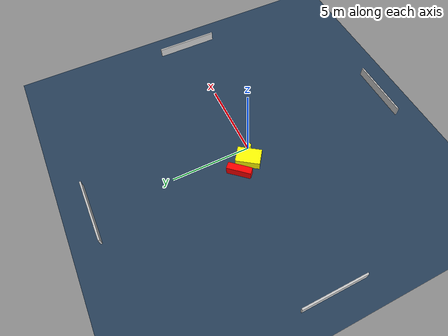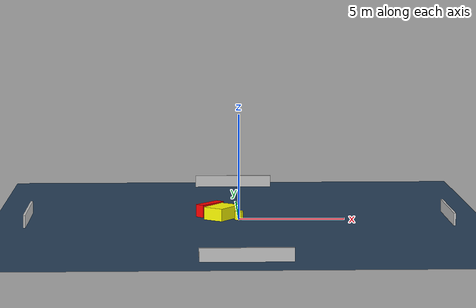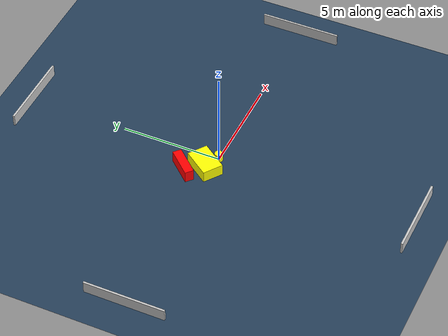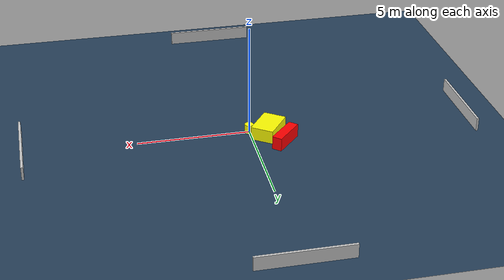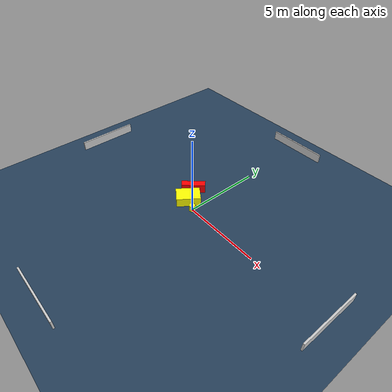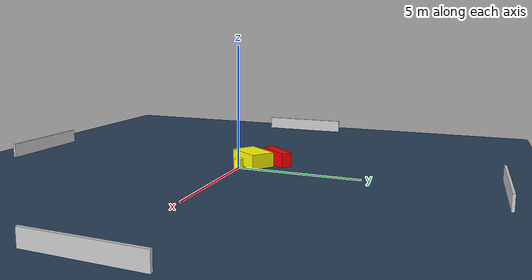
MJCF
<?xml version="1.0" ?>
<mujoco model="generated_environment">
  <option timestep="0.01" integrator="RK4" cone="elliptic"/>
  <default>
    <geom density="1"/>
  </default>
  <asset>
    <texture builtin="gradient" height="3072" name="skybox" rgb1="0.3 0.5 0.7" rgb2="0 0 0" type="skybox" width="512"/>
    <texture builtin="checker" height="300" name="groundplane" rgb1="0.2 0.3 0.4" rgb2="0.1 0.2 0.3" type="2d" width="300"/>
    <material name="groundplane" reflectance="0.2" texrepeat="5 5" texture="groundplane"/>
  </asset>
  <worldbody>
    <light dir="0 0 -1" directional="true" pos="0 0 1.5"/>
    <geom condim="3" friction="0.5 0.005 0.001" material="groundplane" name="floor" pos="0 0 0" size="0 0 0.05" type="plane"/>
    <body name="walls">
      <geom name="wall_1" condim="4" pos="-10.0 0.0 0.3" rgba="0.800000011920929 0.800000011920929 0.800000011920929 1.0" size="0.05 2.0 0.3" type="box"/>
      <geom name="wall_2" condim="4" pos="10.0 0.0 0.3" rgba="0.800000011920929 0.800000011920929 0.800000011920929 1.0" size="0.05 2.0 0.3" type="box"/>
      <geom name="wall_3" condim="4" pos="0.0 -10.0 0.3" rgba="0.800000011920929 0.800000011920929 0.800000011920929 1.0" size="2.0 0.05 0.3" type="box"/>
      <geom name="wall_4" condim="4" pos="0.0 10.0 0.3" rgba="0.800000011920929 0.800000011920929 0.800000011920929 1.0" size="2.0 0.05 0.3" type="box"/>
    </body>
    <body name="robot">
      <joint name="joint_x" type="slide" pos="0 0 0" axis="1 0 0"/>
      <joint name="joint_y" type="slide" pos="0 0 0" axis="0 1 0"/>
      <geom name="robot" type="cylinder" pos="0.0 0.0 0.2" size="0.2 0.2 0.0" mass="5.0" friction="1.0 0.005 0.0001" condim="4" rgba="1.0 1.0 0.0 1.0"/>
    </body>
    <body name="obstacle_1_movable">
      <geom name="obstacle_1_movable" condim="4" pos="-0.8057341247764708 0.3453697421288045 0.3" euler="0 0 324.3373847608484" friction="0.0 0.005 0.001" rgba="1.0 1.0 0.0 1.0" size="0.51674735998876 0.7565968725668419 0.3" type="box" mass="0.1"/>
      <joint type="free"/>
    </body>
    <body name="obstacle_2_static">
      <geom name="obstacle_2_static" condim="4" pos="-1.3545981056055416 1.2354759036738467 0.3" euler="0 0 47.92772308642389" friction="0.0 0.005 0.001" rgba="1.0 0.0 0.0 1.0" size="0.7629995819241473 0.22244326099532485 0.3" type="box"/>
    </body>
  </worldbody>
  <actuator>
    <motor name="actuator_x" joint="joint_x" gear="1" ctrlrange="-1 1"/>
    <motor name="actuator_y" joint="joint_y" gear="1" ctrlrange="-1 1"/>
  </actuator>
</mujoco>
